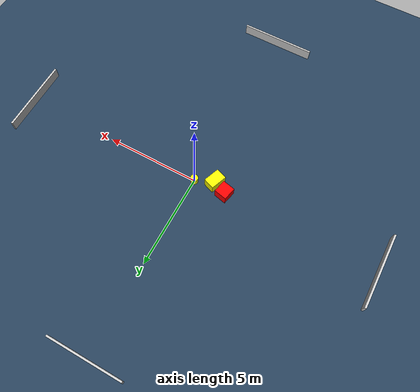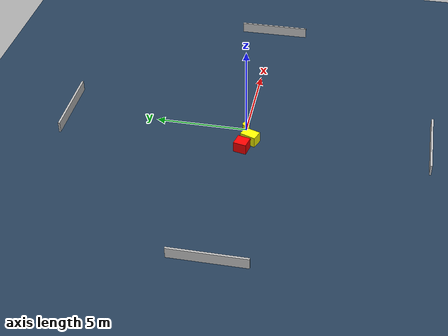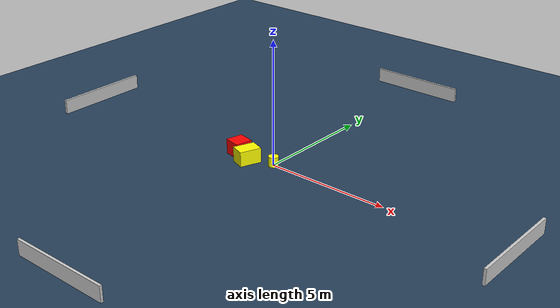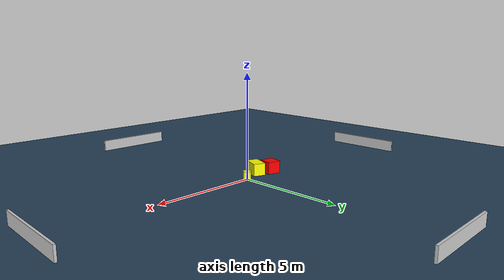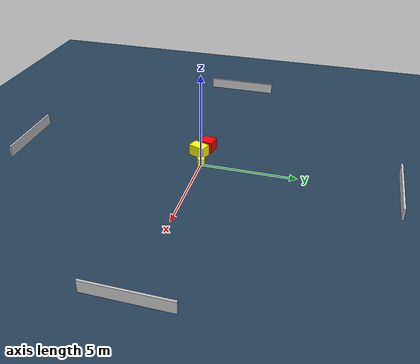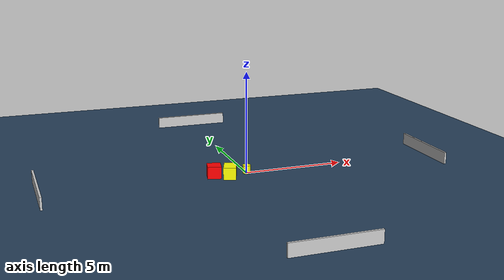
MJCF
<?xml version="1.0" ?>
<mujoco model="generated_environment">
  <option timestep="0.01" integrator="RK4" cone="elliptic"/>
  <default>
    <geom density="1"/>
  </default>
  <asset>
    <texture builtin="gradient" height="3072" name="skybox" rgb1="0.3 0.5 0.7" rgb2="0 0 0" type="skybox" width="512"/>
    <texture builtin="checker" height="300" name="groundplane" rgb1="0.2 0.3 0.4" rgb2="0.1 0.2 0.3" type="2d" width="300"/>
    <material name="groundplane" reflectance="0.2" texrepeat="5 5" texture="groundplane"/>
  </asset>
  <worldbody>
    <light dir="0 0 -1" directional="true" pos="0 0 1.5"/>
    <geom condim="3" friction="0.5 0.005 0.001" material="groundplane" name="floor" pos="0 0 0" size="0 0 0.05" type="plane"/>
    <body name="walls">
      <geom name="wall_1" condim="4" pos="-10.0 0.0 0.3" rgba="0.800000011920929 0.800000011920929 0.800000011920929 1.0" size="0.05 2.0 0.3" type="box"/>
      <geom name="wall_2" condim="4" pos="10.0 0.0 0.3" rgba="0.800000011920929 0.800000011920929 0.800000011920929 1.0" size="0.05 2.0 0.3" type="box"/>
      <geom name="wall_3" condim="4" pos="0.0 -10.0 0.3" rgba="0.800000011920929 0.800000011920929 0.800000011920929 1.0" size="2.0 0.05 0.3" type="box"/>
      <geom name="wall_4" condim="4" pos="0.0 10.0 0.3" rgba="0.800000011920929 0.800000011920929 0.800000011920929 1.0" size="2.0 0.05 0.3" type="box"/>
    </body>
    <body name="robot">
      <joint name="joint_x" type="slide" pos="0 0 0" axis="1 0 0"/>
      <joint name="joint_y" type="slide" pos="0 0 0" axis="0 1 0"/>
      <geom name="robot" type="cylinder" pos="0.0 0.0 0.2" size="0.2 0.2 0.0" mass="5.0" friction="1.0 0.005 0.0001" condim="4" rgba="1.0 1.0 0.0 1.0"/>
    </body>
    <body name="obstacle_1_movable">
      <geom name="obstacle_1_movable" condim="4" pos="-0.9885432364038726 -0.39305398305333084 0.3" euler="0 0 69.38630179853317" friction="0.0 0.005 0.001" rgba="1.0 1.0 0.0 1.0" size="0.44147458817644547 0.29961080869587364 0.3" type="box" mass="0.1"/>
      <joint type="free"/>
    </body>
    <body name="obstacle_2_static">
      <geom name="obstacle_2_static" condim="4" pos="-1.6948425839712937 -0.07509943109457776 0.3" euler="0 0 167.4921162373217" friction="0.0 0.005 0.001" rgba="1.0 0.0 0.0 1.0" size="0.3361971015050137 0.3508984726787485 0.3" type="box"/>
    </body>
  </worldbody>
  <actuator>
    <motor name="actuator_x" joint="joint_x" gear="1" ctrlrange="-1 1"/>
    <motor name="actuator_y" joint="joint_y" gear="1" ctrlrange="-1 1"/>
  </actuator>
</mujoco>
